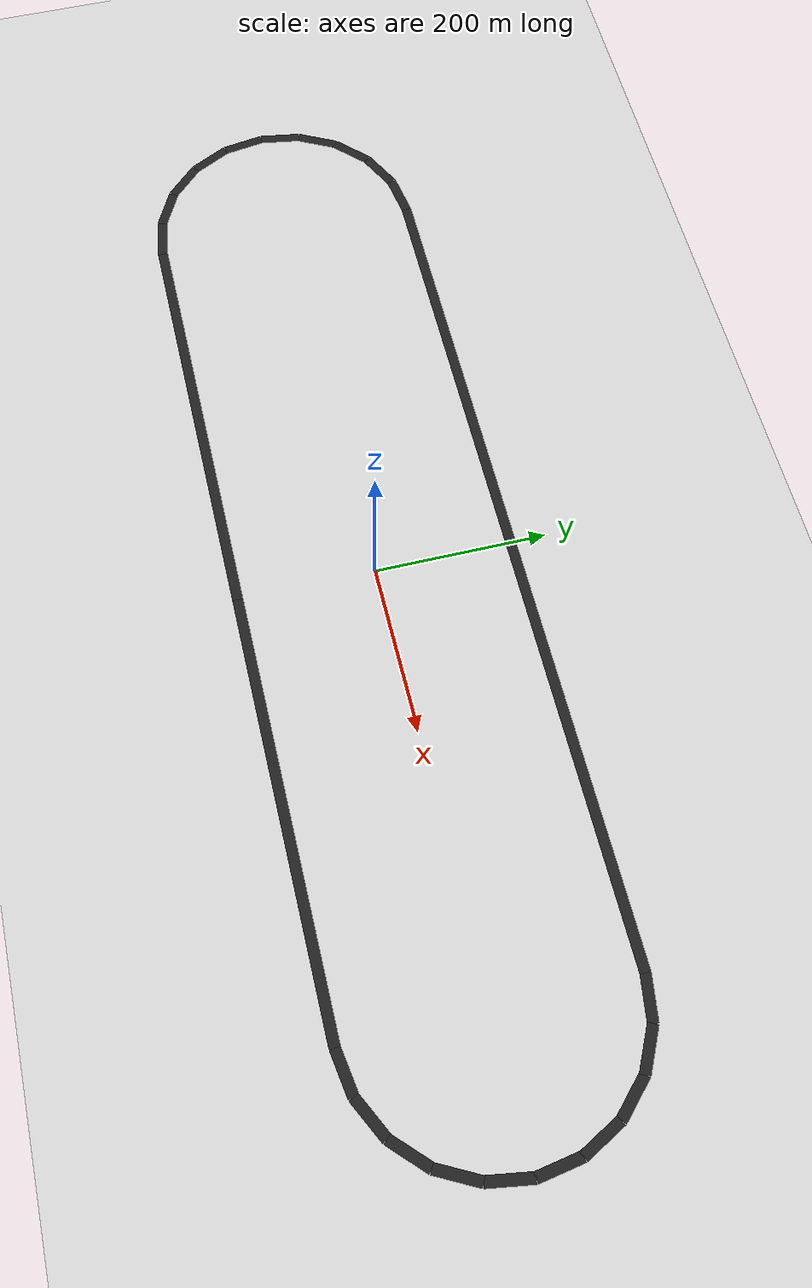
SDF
<sdf version="1.6">
 <world name="track_3km">
  <include><uri>model://sun</uri></include>
  <include><uri>model://ground_plane</uri></include>
  <model name="track_surface">
   <static>true</static>
   <link name="road_1">
    <pose>-250.514 159.155 0.021 0 0 0.000000</pose>
    <visual name="visual">
     <geometry><box><size>501.628 12 0.02</size></box></geometry>
     <material>
      <script><uri>file://media/materials/scripts/gazebo.material</uri><name>Gazebo/Black</name></script>
     </material>
    </visual>
   </link>
   <link name="road_2">
    <pose>250.514 159.155 0.021 0 0 0.000000</pose>
    <visual name="visual">
     <geometry><box><size>501.628 12 0.02</size></box></geometry>
     <material>
      <script><uri>file://media/materials/scripts/gazebo.material</uri><name>Gazebo/Black</name></script>
     </material>
    </visual>
   </link>
   <link name="road_3">
    <pose>525.619 155.260 0.021 0 0 -0.157089</pose>
    <visual name="visual">
     <geometry><box><size>50.394 12 0.02</size></box></geometry>
     <material>
      <script><uri>file://media/materials/scripts/gazebo.material</uri><name>Gazebo/Black</name></script>
     </material>
    </visual>
   </link>
   <link name="road_4">
    <pose>572.393 140.062 0.021 0 0 -0.471228</pose>
    <visual name="visual">
     <geometry><box><size>50.395 12 0.02</size></box></geometry>
     <material>
      <script><uri>file://media/materials/scripts/gazebo.material</uri><name>Gazebo/Black</name></script>
     </material>
    </visual>
   </link>
   <link name="road_5">
    <pose>612.182 111.154 0.021 0 0 -0.785398</pose>
    <visual name="visual">
     <geometry><box><size>50.394 12 0.02</size></box></geometry>
     <material>
      <script><uri>file://media/materials/scripts/gazebo.material</uri><name>Gazebo/Black</name></script>
     </material>
    </visual>
   </link>
   <link name="road_6">
    <pose>641.090 71.365 0.021 0 0 -1.099569</pose>
    <visual name="visual">
     <geometry><box><size>50.395 12 0.02</size></box></geometry>
     <material>
      <script><uri>file://media/materials/scripts/gazebo.material</uri><name>Gazebo/Black</name></script>
     </material>
    </visual>
   </link>
   <link name="road_7">
    <pose>656.288 24.590 0.021 0 0 -1.413707</pose>
    <visual name="visual">
     <geometry><box><size>50.394 12 0.02</size></box></geometry>
     <material>
      <script><uri>file://media/materials/scripts/gazebo.material</uri><name>Gazebo/Black</name></script>
     </material>
    </visual>
   </link>
   <link name="road_8">
    <pose>656.288 -24.590 0.021 0 0 -1.727886</pose>
    <visual name="visual">
     <geometry><box><size>50.394 12 0.02</size></box></geometry>
     <material>
      <script><uri>file://media/materials/scripts/gazebo.material</uri><name>Gazebo/Black</name></script>
     </material>
    </visual>
   </link>
   <link name="road_9">
    <pose>641.090 -71.365 0.021 0 0 -2.042024</pose>
    <visual name="visual">
     <geometry><box><size>50.395 12 0.02</size></box></geometry>
     <material>
      <script><uri>file://media/materials/scripts/gazebo.material</uri><name>Gazebo/Black</name></script>
     </material>
    </visual>
   </link>
   <link name="road_10">
    <pose>612.182 -111.154 0.021 0 0 -2.356194</pose>
    <visual name="visual">
     <geometry><box><size>50.394 12 0.02</size></box></geometry>
     <material>
      <script><uri>file://media/materials/scripts/gazebo.material</uri><name>Gazebo/Black</name></script>
     </material>
    </visual>
   </link>
   <link name="road_11">
    <pose>572.393 -140.062 0.021 0 0 -2.670365</pose>
    <visual name="visual">
     <geometry><box><size>50.395 12 0.02</size></box></geometry>
     <material>
      <script><uri>file://media/materials/scripts/gazebo.material</uri><name>Gazebo/Black</name></script>
     </material>
    </visual>
   </link>
   <link name="road_12">
    <pose>525.619 -155.260 0.021 0 0 -2.984503</pose>
    <visual name="visual">
     <geometry><box><size>50.394 12 0.02</size></box></geometry>
     <material>
      <script><uri>file://media/materials/scripts/gazebo.material</uri><name>Gazebo/Black</name></script>
     </material>
    </visual>
   </link>
   <link name="road_13">
    <pose>250.514 -159.155 0.021 0 0 3.141593</pose>
    <visual name="visual">
     <geometry><box><size>501.628 12 0.02</size></box></geometry>
     <material>
      <script><uri>file://media/materials/scripts/gazebo.material</uri><name>Gazebo/Black</name></script>
     </material>
    </visual>
   </link>
   <link name="road_14">
    <pose>-250.514 -159.155 0.021 0 0 3.141593</pose>
    <visual name="visual">
     <geometry><box><size>501.628 12 0.02</size></box></geometry>
     <material>
      <script><uri>file://media/materials/scripts/gazebo.material</uri><name>Gazebo/Black</name></script>
     </material>
    </visual>
   </link>
   <link name="road_15">
    <pose>-525.619 -155.260 0.021 0 0 2.984503</pose>
    <visual name="visual">
     <geometry><box><size>50.394 12 0.02</size></box></geometry>
     <material>
      <script><uri>file://media/materials/scripts/gazebo.material</uri><name>Gazebo/Black</name></script>
     </material>
    </visual>
   </link>
   <link name="road_16">
    <pose>-572.393 -140.062 0.021 0 0 2.670365</pose>
    <visual name="visual">
     <geometry><box><size>50.395 12 0.02</size></box></geometry>
     <material>
      <script><uri>file://media/materials/scripts/gazebo.material</uri><name>Gazebo/Black</name></script>
     </material>
    </visual>
   </link>
   <link name="road_17">
    <pose>-612.182 -111.154 0.021 0 0 2.356194</pose>
    <visual name="visual">
     <geometry><box><size>50.394 12 0.02</size></box></geometry>
     <material>
      <script><uri>file://media/materials/scripts/gazebo.material</uri><name>Gazebo/Black</name></script>
     </material>
    </visual>
   </link>
   <link name="road_18">
    <pose>-641.090 -71.365 0.021 0 0 2.042024</pose>
    <visual name="visual">
     <geometry><box><size>50.395 12 0.02</size></box></geometry>
     <material>
      <script><uri>file://media/materials/scripts/gazebo.material</uri><name>Gazebo/Black</name></script>
     </material>
    </visual>
   </link>
   <link name="road_19">
    <pose>-656.288 -24.590 0.021 0 0 1.727886</pose>
    <visual name="visual">
     <geometry><box><size>50.394 12 0.02</size></box></geometry>
     <material>
      <script><uri>file://media/materials/scripts/gazebo.material</uri><name>Gazebo/Black</name></script>
     </material>
    </visual>
   </link>
   <link name="road_20">
    <pose>-656.288 24.590 0.021 0 0 1.413707</pose>
    <visual name="visual">
     <geometry><box><size>50.394 12 0.02</size></box></geometry>
     <material>
      <script><uri>file://media/materials/scripts/gazebo.material</uri><name>Gazebo/Black</name></script>
     </material>
    </visual>
   </link>
   <link name="road_21">
    <pose>-641.090 71.365 0.021 0 0 1.099569</pose>
    <visual name="visual">
     <geometry><box><size>50.395 12 0.02</size></box></geometry>
     <material>
      <script><uri>file://media/materials/scripts/gazebo.material</uri><name>Gazebo/Black</name></script>
     </material>
    </visual>
   </link>
   <link name="road_22">
    <pose>-612.182 111.154 0.021 0 0 0.785398</pose>
    <visual name="visual">
     <geometry><box><size>50.394 12 0.02</size></box></geometry>
     <material>
      <script><uri>file://media/materials/scripts/gazebo.material</uri><name>Gazebo/Black</name></script>
     </material>
    </visual>
   </link>
   <link name="road_23">
    <pose>-572.393 140.062 0.021 0 0 0.471228</pose>
    <visual name="visual">
     <geometry><box><size>50.395 12 0.02</size></box></geometry>
     <material>
      <script><uri>file://media/materials/scripts/gazebo.material</uri><name>Gazebo/Black</name></script>
     </material>
    </visual>
   </link>
   <link name="road_24">
    <pose>-525.619 155.260 0.021 0 0 0.157089</pose>
    <visual name="visual">
     <geometry><box><size>50.394 12 0.02</size></box></geometry>
     <material>
      <script><uri>file://media/materials/scripts/gazebo.material</uri><name>Gazebo/Black</name></script>
     </material>
    </visual>
   </link>
  </model>
 </world>
</sdf>
